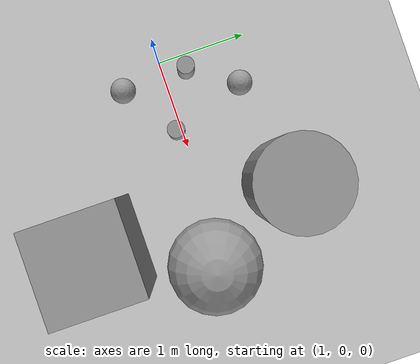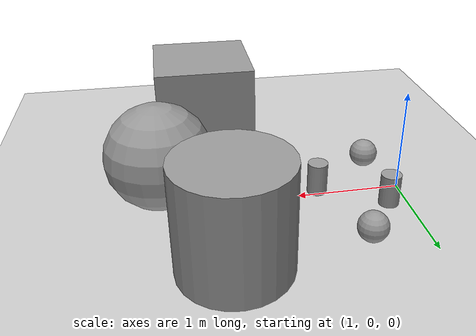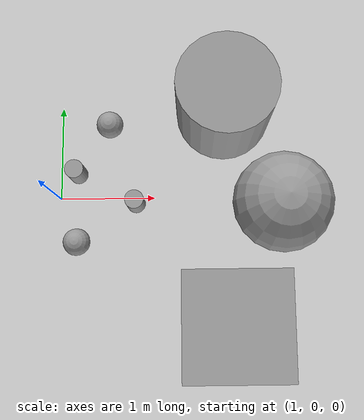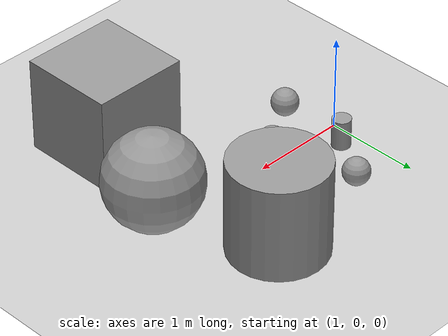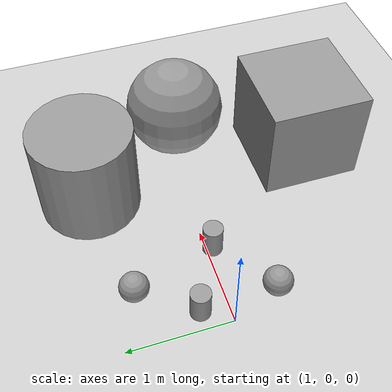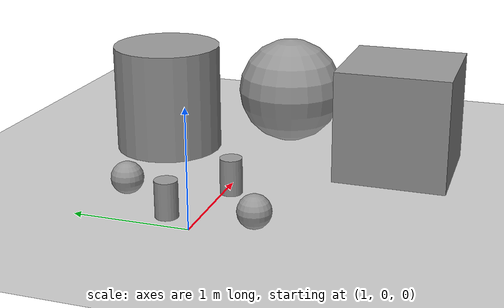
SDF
<sdf version="1.6">
 <world name="default">
  <model name="ground_plane">
   <static>1</static>
   <link name="link">
    <collision name="collision">
     <geometry><plane><normal>0 0 1</normal><size>100 100</size></plane></geometry>
     <surface>
      <contact><collide_bitmask>65535</collide_bitmask></contact>
      <friction><ode><mu>100</mu><mu2>50</mu2></ode></friction>
     </surface>
    </collision>
    <visual name="visual">
     <cast_shadows>0</cast_shadows>
     <geometry><plane><normal>0 0 1</normal><size>100 100</size></plane></geometry>
     <material>
      <script><uri>file://media/materials/scripts/gazebo.material</uri><name>Gazebo/Grey</name></script>
     </material>
    </visual>
   </link>
  </model>
  <light name="sun" type="directional">
   <pose>0 0 10 0 -0 0</pose>
   <diffuse>0.8 0.8 0.8 1</diffuse>
   <specular>0.2 0.2 0.2 1</specular>
   <attenuation>
    <range>1000</range>
    <constant>0.9</constant>
    <linear>0.01</linear>
    <quadratic>0.001</quadratic>
   </attenuation>
   <direction>-0.5 0.1 -0.9</direction>
  </light>
  <gravity>0 0 -9.8</gravity>
  <magnetic_field>6e-06 2.3e-05 -4.2e-05</magnetic_field>
  <atmosphere type="adiabatic"/>
  <physics name="default_physics" default="0" type="ode">
   <max_step_size>0.001</max_step_size>
   <real_time_factor>1</real_time_factor>
   <real_time_update_rate>1000</real_time_update_rate>
  </physics>
  <scene><ambient>0.4 0.4 0.4 1</ambient><background>0.7 0.7 0.7 1</background><shadows>1</shadows></scene>
  <audio><device>default</device></audio>
  <spherical_coordinates>
   <surface_model>EARTH_WGS84</surface_model>
   <latitude_deg>0</latitude_deg>
   <longitude_deg>0</longitude_deg>
   <elevation>0</elevation>
   <heading_deg>0</heading_deg>
  </spherical_coordinates>
  <model name="unit_cylinder">
   <pose>2.74058 0.921846 0.499998 3e-06 4e-06 -0</pose>
   <link name="link">
    <inertial>
     <mass>1</mass>
     <inertia><ixx>0.145833</ixx><ixy>0</ixy><ixz>0</ixz><iyy>0.145833</iyy><iyz>0</iyz><izz>0.125</izz></inertia>
    </inertial>
    <collision name="collision">
     <geometry><cylinder><radius>0.5</radius><length>1</length></cylinder></geometry>
    </collision>
    <visual name="visual">
     <geometry><cylinder><radius>0.5</radius><length>1</length></cylinder></geometry>
     <material>
      <script><name>Gazebo/Grey</name><uri>file://media/materials/scripts/gazebo.material</uri></script>
     </material>
    </visual>
   </link>
  </model>
  <model name="unit_box">
   <pose>2.78865 -1.31486 0.499995 0 1e-05 0</pose>
   <link name="link">
    <inertial>
     <mass>1</mass>
     <inertia>
      <ixx>0.166667</ixx>
      <ixy>0</ixy>
      <ixz>0</ixz>
      <iyy>0.166667</iyy>
      <iyz>0</iyz>
      <izz>0.166667</izz>
     </inertia>
    </inertial>
    <collision name="collision"><geometry><box><size>1 1 1</size></box></geometry></collision>
    <visual name="visual">
     <geometry><box><size>1 1 1</size></box></geometry>
     <material>
      <script><name>Gazebo/Grey</name><uri>file://media/materials/scripts/gazebo.material</uri></script>
     </material>
    </visual>
   </link>
  </model>
  <model name="unit_sphere">
   <pose>3.29493 -0.136358 0.5 0 -0 0</pose>
   <link name="link">
    <inertial>
     <mass>1</mass>
     <inertia><ixx>0.1</ixx><ixy>0</ixy><ixz>0</ixz><iyy>0.1</iyy><iyz>0</iyz><izz>0.1</izz></inertia>
    </inertial>
    <collision name="collision"><geometry><sphere><radius>0.5</radius></sphere></geometry></collision>
    <visual name="visual">
     <geometry><sphere><radius>0.5</radius></sphere></geometry>
     <material>
      <script><name>Gazebo/Grey</name><uri>file://media/materials/scripts/gazebo.material</uri></script>
     </material>
    </visual>
   </link>
  </model>
  <model name="unit_sphere_clone">
   <pose>1.19277 -0.47739 0.141082 0 -0 0</pose>
   <link name="link">
    <inertial>
     <mass>1</mass>
     <inertia><ixx>0.1</ixx><ixy>0</ixy><ixz>0</ixz><iyy>0.1</iyy><iyz>0</iyz><izz>0.1</izz></inertia>
    </inertial>
    <collision name="collision"><geometry><sphere><radius>0.141082</radius></sphere></geometry></collision>
    <visual name="visual">
     <geometry><sphere><radius>0.141082</radius></sphere></geometry>
     <material>
      <script><name>Gazebo/Grey</name><uri>file://media/materials/scripts/gazebo.material</uri></script>
     </material>
    </visual>
   </link>
  </model>
  <model name="unit_cylinder_0">
   <pose>1.18161 0.262931 0.158232 0 -0 0</pose>
   <link name="link">
    <inertial>
     <mass>1</mass>
     <inertia><ixx>0.145833</ixx><ixy>0</ixy><ixz>0</ixz><iyy>0.145833</iyy><iyz>0</iyz><izz>0.125</izz></inertia>
    </inertial>
    <collision name="collision">
     <geometry><cylinder><radius>0.097049</radius><length>0.316482</length></cylinder></geometry>
    </collision>
    <visual name="visual">
     <geometry><cylinder><radius>0.097049</radius><length>0.316482</length></cylinder></geometry>
     <material>
      <script><name>Gazebo/Grey</name><uri>file://media/materials/scripts/gazebo.material</uri></script>
     </material>
    </visual>
   </link>
  </model>
  <model name="unit_sphere_clone_clone">
   <pose>1.52716 0.776492 0.141082 0 -0 0</pose>
   <link name="link">
    <inertial>
     <mass>1</mass>
     <inertia><ixx>0.1</ixx><ixy>0</ixy><ixz>0</ixz><iyy>0.1</iyy><iyz>0</iyz><izz>0.1</izz></inertia>
    </inertial>
    <collision name="collision"><geometry><sphere><radius>0.141082</radius></sphere></geometry></collision>
    <visual name="visual">
     <geometry><sphere><radius>0.141082</radius></sphere></geometry>
     <material>
      <script><name>Gazebo/Grey</name><uri>file://media/materials/scripts/gazebo.material</uri></script>
     </material>
    </visual>
   </link>
  </model>
  <model name="unit_cylinder_0_clone">
   <pose>1.8015 -0.06073 0.158232 0 -0 0</pose>
   <link name="link">
    <inertial>
     <mass>1</mass>
     <inertia><ixx>0.145833</ixx><ixy>0</ixy><ixz>0</ixz><iyy>0.145833</iyy><iyz>0</iyz><izz>0.125</izz></inertia>
    </inertial>
    <collision name="collision">
     <geometry><cylinder><radius>0.097049</radius><length>0.316482</length></cylinder></geometry>
    </collision>
    <visual name="visual">
     <geometry><cylinder><radius>0.097049</radius><length>0.316482</length></cylinder></geometry>
     <material>
      <script><name>Gazebo/Grey</name><uri>file://media/materials/scripts/gazebo.material</uri></script>
     </material>
    </visual>
   </link>
  </model>
 </world>
</sdf>
